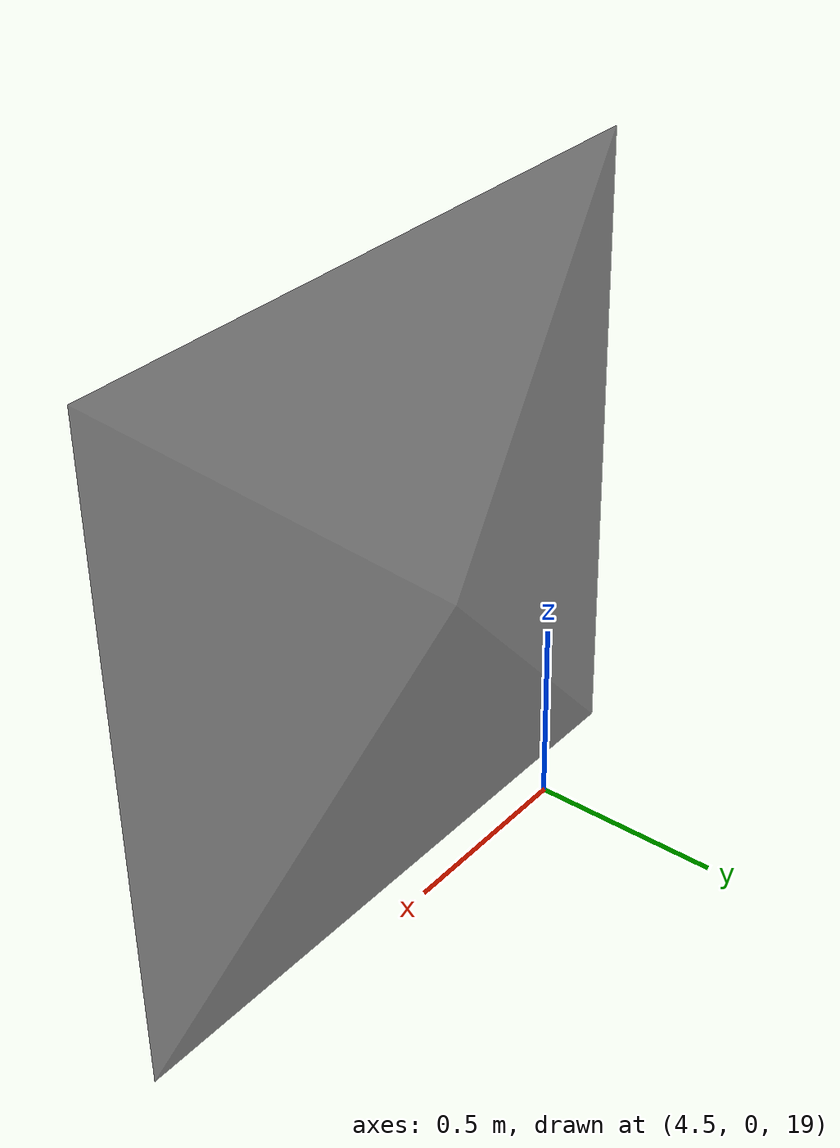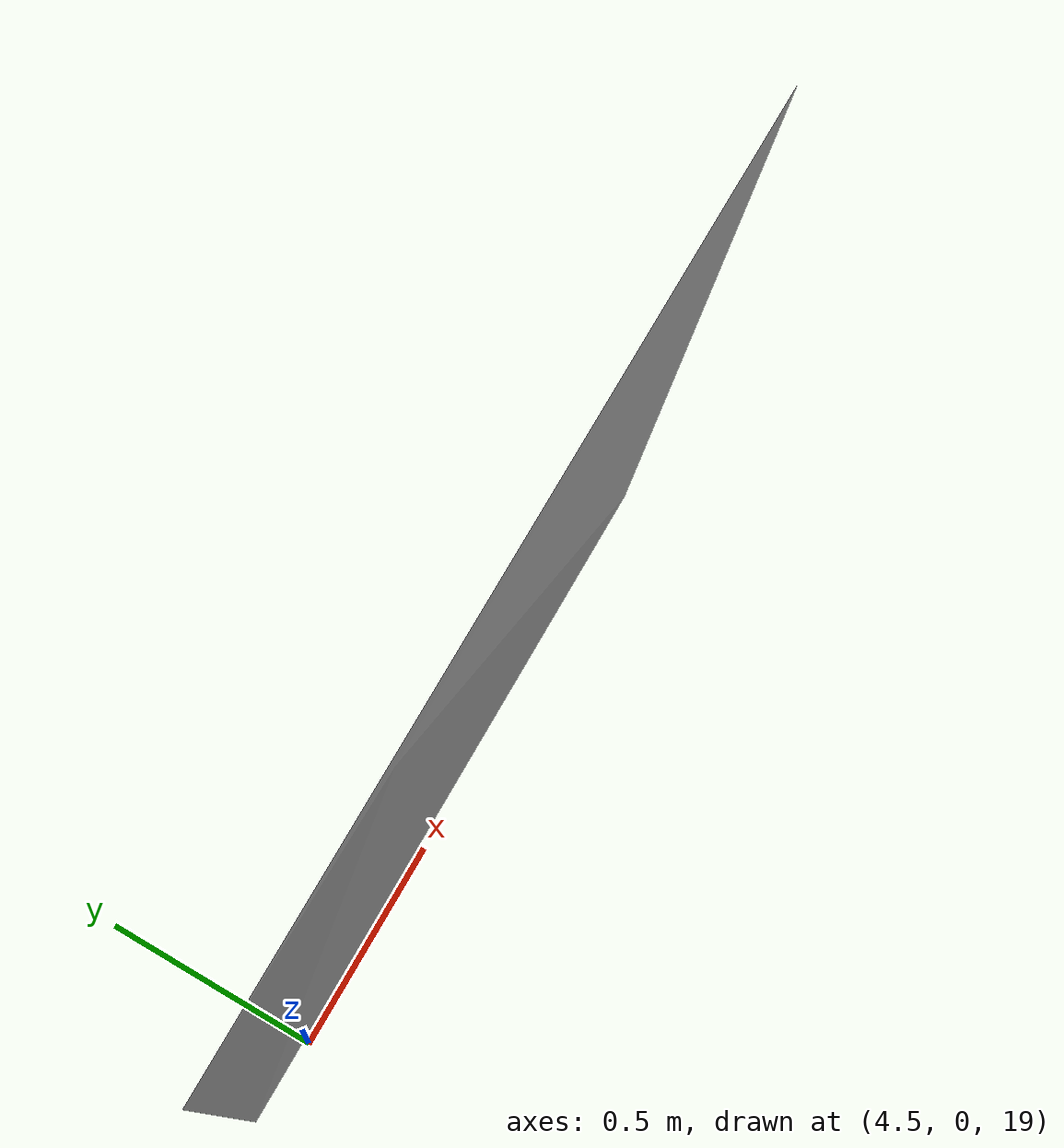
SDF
<?xml version="1.0" ?>
<sdf version="1.9">
  <model name="clover_03">
    <static>true</static>
    <link name="link">
      <collision name="collision">
        <pose>0 0 0.1 0 0 0</pose>
        <geometry>
          <box>
            <size>0.4 0.4 0.2</size>
          </box>
        </geometry>
      </collision>
      <visual name="visual">
        <geometry>
          <mesh>
            <uri>model://clover_03/meshes/Clover-03.obj</uri>
          </mesh>
        </geometry>
      </visual>
    </link>
  </model>
</sdf>
